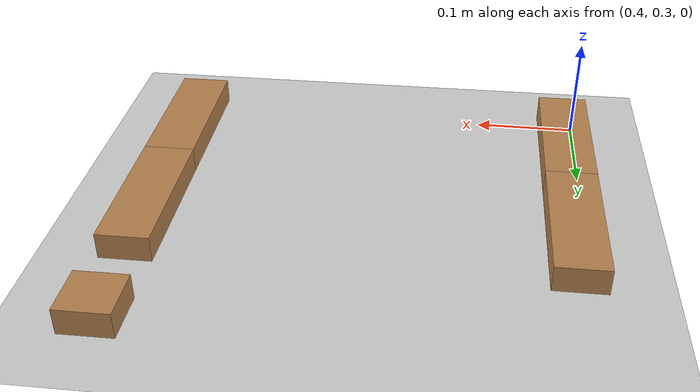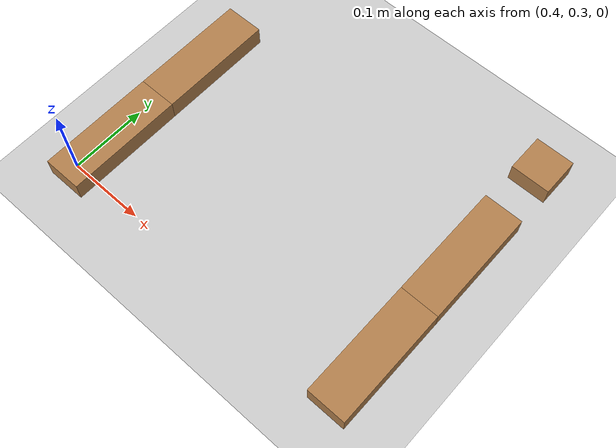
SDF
<?xml version="1.0" ?>
<sdf version="1.5">
  <world name="default">
    <!-- A global light source -->
    <include>
      <uri>model://sun</uri>
    </include>
    <!-- A ground plane -->
    <include>
      <uri>model://ground_plane</uri>
    </include>
    <physics type = "ode">
        <max_step_size>0.001</max_step_size>
        <real_time_factor>1</real_time_factor>
        <real_time_update_rate>1000</real_time_update_rate>
    </physics>

    <!-- A parallelepiped -->
    <model name="cube_05_15_05_01">
      <pose>0.81 +0.35 0.0 0 0 0</pose>
      <link name="link">
        <pose>0 0 0 0 0 0</pose>
        <inertial>
          <mass>0.1</mass>
            <inertia> <!-- inertias are tricky to compute -->
              <!-- http://gazebosim.org/tutorials?tut=inertia&cat=build_robot -->
              <ixx>0.0002075</ixx>   <!-- for a box: ixx = 0.083 * mass * (y*y + z*z) -->
              <ixy>0.0</ixy>         <!-- for a box: ixy = 0 -->
              <ixz>0.0</ixz>         <!-- for a box: ixz = 0 -->
              <iyy>4.15e-5</iyy>       <!-- for a box: iyy = 0.083 * mass * (x*x + z*z) -->
              <iyz>0.0</iyz>         <!-- for a box: iyz = 0 -->
              <izz>0.0002075</izz>   <!-- for a box: izz = 0.083 * mass * (x*x + y*y) -->
            </inertia>
        </inertial>

        <collision name="collision">
          <geometry>
            <box>
              <size>0.05 0.15 0.05</size>
            </box>
          </geometry>
          <surface>
            <contact>
              <poissons_ratio>0.347</poissons_ratio>
              <elastic_modulus>8.8e+09</elastic_modulus>
              <ode>
                <kp>10000</kp>
                <kd>0.01</kd>
                <max_vel>1.0</max_vel>
                <min_depth>0.001</min_depth>
              </ode>
            </contact>
            <friction>
              <torsional>
                <coefficient>1.0</coefficient>
                <use_patch_radius>0</use_patch_radius>
                <surface_radius>0.05</surface_radius>
              </torsional>
            </friction>
          </surface>
        </collision>

        <visual name="visual">
          <geometry>
            <box>
              <size>0.05 0.15 0.05</size>
            </box>
          </geometry>
          <material>
            <script>
              <uri>file://media/materials/scripts/gazebo.material</uri>
              <name>Gazebo/Wood</name>
            </script>
          </material>
        </visual>
      </link>
    </model>

    <!-- A base parallelepiped -->
    <model name="cube_05_15_05_02">
      <pose>0.81 +0.50 0.0 0 0 0</pose>
      <link name="link">
        <pose>0 0 0 0 0 0</pose>
        <inertial>
          <mass>0.1</mass>
            <inertia> <!-- inertias are tricky to compute -->
              <!-- http://gazebosim.org/tutorials?tut=inertia&cat=build_robot -->
              <ixx>0.0002075</ixx>   <!-- for a box: ixx = 0.083 * mass * (y*y + z*z) -->
              <ixy>0.0</ixy>         <!-- for a box: ixy = 0 -->
              <ixz>0.0</ixz>         <!-- for a box: ixz = 0 -->
              <iyy>4.15e-5</iyy>       <!-- for a box: iyy = 0.083 * mass * (x*x + z*z) -->
              <iyz>0.0</iyz>         <!-- for a box: iyz = 0 -->
              <izz>0.0002075</izz>   <!-- for a box: izz = 0.083 * mass * (x*x + y*y) -->
            </inertia>
        </inertial>

        <collision name="collision">
          <geometry>
            <box>
              <size>0.05 0.15 0.05</size>
            </box>
          </geometry>
          <surface>
            <contact>
              <poissons_ratio>0.347</poissons_ratio>
              <elastic_modulus>8.8e+09</elastic_modulus>
              <ode>
                <kp>10000</kp>
                <kd>0.01</kd>
                <max_vel>1.0</max_vel>
                <min_depth>0.001</min_depth>
              </ode>
            </contact>
            <friction>
              <torsional>
                <coefficient>1.0</coefficient>
                <use_patch_radius>0</use_patch_radius>
                <surface_radius>0.05</surface_radius>
              </torsional>
            </friction>
          </surface>
        </collision>

        <visual name="visual">
          <geometry>
            <box>
              <size>0.05 0.15 0.05</size>
            </box>
          </geometry>
          <material>
            <script>
              <uri>file://media/materials/scripts/gazebo.material</uri>
              <name>Gazebo/Wood</name>
            </script>
          </material>
        </visual>
      </link>
    </model>

    <!-- A parallelepiped -->
    <model name="cube_05_15_05_03">
      <pose>0.41 +0.35 0.0 0 0 0</pose>
      <link name="link">
        <pose>0 0 0 0 0 0</pose>
        <inertial>
          <mass>0.1</mass>
            <inertia> <!-- inertias are tricky to compute -->
              <!-- http://gazebosim.org/tutorials?tut=inertia&cat=build_robot -->
              <ixx>0.0002075</ixx>   <!-- for a box: ixx = 0.083 * mass * (y*y + z*z) -->
              <ixy>0.0</ixy>         <!-- for a box: ixy = 0 -->
              <ixz>0.0</ixz>         <!-- for a box: ixz = 0 -->
              <iyy>4.15e-5</iyy>       <!-- for a box: iyy = 0.083 * mass * (x*x + z*z) -->
              <iyz>0.0</iyz>         <!-- for a box: iyz = 0 -->
              <izz>0.0002075</izz>   <!-- for a box: izz = 0.083 * mass * (x*x + y*y) -->
            </inertia>
        </inertial>

        <collision name="collision">
          <geometry>
            <box>
              <size>0.05 0.15 0.05</size>
            </box>
          </geometry>
          <surface>
            <contact>
              <poissons_ratio>0.347</poissons_ratio>
              <elastic_modulus>8.8e+09</elastic_modulus>
              <ode>
                <kp>10000</kp>
                <kd>0.01</kd>
                <max_vel>1.0</max_vel>
                <min_depth>0.001</min_depth>
              </ode>
            </contact>
            <friction>
              <torsional>
                <coefficient>1.0</coefficient>
                <use_patch_radius>0</use_patch_radius>
                <surface_radius>0.05</surface_radius>
              </torsional>
            </friction>
          </surface>
        </collision>

        <visual name="visual">
          <geometry>
            <box>
              <size>0.05 0.15 0.05</size>
            </box>
          </geometry>
          <material>
            <script>
              <uri>file://media/materials/scripts/gazebo.material</uri>
              <name>Gazebo/Wood</name>
            </script>
          </material>
        </visual>
      </link>
    </model>

    <!-- A base parallelepiped -->
    <model name="cube_05_15_05_04">
      <pose>0.41 +0.50 0.0 0 0 0</pose>
      <link name="link">
        <pose>0 0 0 0 0 0</pose>
        <inertial>
          <mass>0.1</mass>
            <inertia> <!-- inertias are tricky to compute -->
              <!-- http://gazebosim.org/tutorials?tut=inertia&cat=build_robot -->
              <ixx>0.0002075</ixx>   <!-- for a box: ixx = 0.083 * mass * (y*y + z*z) -->
              <ixy>0.0</ixy>         <!-- for a box: ixy = 0 -->
              <ixz>0.0</ixz>         <!-- for a box: ixz = 0 -->
              <iyy>4.15e-5</iyy>       <!-- for a box: iyy = 0.083 * mass * (x*x + z*z) -->
              <iyz>0.0</iyz>         <!-- for a box: iyz = 0 -->
              <izz>0.0002075</izz>   <!-- for a box: izz = 0.083 * mass * (x*x + y*y) -->
            </inertia>
        </inertial>

        <collision name="collision">
          <geometry>
            <box>
              <size>0.05 0.15 0.05</size>
            </box>
          </geometry>
          <surface>
            <contact>
              <poissons_ratio>0.347</poissons_ratio>
              <elastic_modulus>8.8e+09</elastic_modulus>
              <ode>
                <kp>10000</kp>
                <kd>0.01</kd>
                <max_vel>1.0</max_vel>
                <min_depth>0.001</min_depth>
              </ode>
            </contact>
            <friction>
              <torsional>
                <coefficient>1.0</coefficient>
                <use_patch_radius>0</use_patch_radius>
                <surface_radius>0.05</surface_radius>
              </torsional>
            </friction>
          </surface>
        </collision>

        <visual name="visual">
          <geometry>
            <box>
              <size>0.05 0.15 0.05</size>
            </box>
          </geometry>
          <material>
            <script>
              <uri>file://media/materials/scripts/gazebo.material</uri>
              <name>Gazebo/Wood</name>
            </script>
          </material>
        </visual>
      </link>
    </model>

    <!-- A base cube -->
    <model name="cube_05_05_05_11">
      <pose>0.81 +0.65 0.0 0 0 0</pose>
      <link name="link">
        <pose>0 0 0 0 0 0</pose>
        <inertial>
          <mass>0.1</mass>
            <inertia> <!-- inertias are tricky to compute -->
              <!-- http://gazebosim.org/tutorials?tut=inertia&cat=build_robot -->
              <ixx>0.0002075</ixx>   <!-- for a box: ixx = 0.083 * mass * (y*y + z*z) -->
              <ixy>0.0</ixy>         <!-- for a box: ixy = 0 -->
              <ixz>0.0</ixz>         <!-- for a box: ixz = 0 -->
              <iyy>4.15e-5</iyy>       <!-- for a box: iyy = 0.083 * mass * (x*x + z*z) -->
              <iyz>0.0</iyz>         <!-- for a box: iyz = 0 -->
              <izz>0.0002075</izz>   <!-- for a box: izz = 0.083 * mass * (x*x + y*y) -->
            </inertia>
        </inertial>

        <collision name="collision">
          <geometry>
            <box>
              <size>0.05 0.05 0.05</size>
            </box>
          </geometry>
          <surface>
            <contact>
              <poissons_ratio>0.347</poissons_ratio>
              <elastic_modulus>8.8e+09</elastic_modulus>
              <ode>
                <kp>10000</kp>
                <kd>0.01</kd>
                <max_vel>1.0</max_vel>
                <min_depth>0.001</min_depth>
              </ode>
            </contact>
            <friction>
              <torsional>
                <coefficient>1.0</coefficient>
                <use_patch_radius>0</use_patch_radius>
                <surface_radius>0.05</surface_radius>
              </torsional>
            </friction>
          </surface>
        </collision>

        <visual name="visual">
          <geometry>
            <box>
              <size>0.05 0.05 0.05</size>
            </box>
          </geometry>
          <material>
            <script>
              <uri>file://media/materials/scripts/gazebo.material</uri>
              <name>Gazebo/Wood</name>
            </script>
          </material>
        </visual>
      </link>
    </model>

    <!-- A base cube -->
    <model name="cube_05_05_05_12">
      <pose>0.81 +0.65 0.0 0 0 0</pose>
      <link name="link">
        <pose>0 0 0 0 0 0</pose>
        <inertial>
          <mass>0.1</mass>
            <inertia> <!-- inertias are tricky to compute -->
              <!-- http://gazebosim.org/tutorials?tut=inertia&cat=build_robot -->
              <ixx>0.0002075</ixx>   <!-- for a box: ixx = 0.083 * mass * (y*y + z*z) -->
              <ixy>0.0</ixy>         <!-- for a box: ixy = 0 -->
              <ixz>0.0</ixz>         <!-- for a box: ixz = 0 -->
              <iyy>4.15e-5</iyy>       <!-- for a box: iyy = 0.083 * mass * (x*x + z*z) -->
              <iyz>0.0</iyz>         <!-- for a box: iyz = 0 -->
              <izz>0.0002075</izz>   <!-- for a box: izz = 0.083 * mass * (x*x + y*y) -->
            </inertia>
        </inertial>

        <collision name="collision">
          <geometry>
            <box>
              <size>0.05 0.05 0.05</size>
            </box>
          </geometry>
          <surface>
            <contact>
              <poissons_ratio>0.347</poissons_ratio>
              <elastic_modulus>8.8e+09</elastic_modulus>
              <ode>
                <kp>10000</kp>
                <kd>0.01</kd>
                <max_vel>1.0</max_vel>
                <min_depth>0.001</min_depth>
              </ode>
            </contact>
            <friction>
              <torsional>
                <coefficient>1.0</coefficient>
                <use_patch_radius>0</use_patch_radius>
                <surface_radius>0.05</surface_radius>
              </torsional>
            </friction>
          </surface>
        </collision>

        <visual name="visual">
          <geometry>
            <box>
              <size>0.05 0.05 0.05</size>
            </box>
          </geometry>
          <material>
            <script>
              <uri>file://media/materials/scripts/gazebo.material</uri>
              <name>Gazebo/Wood</name>
            </script>
          </material>
        </visual>
      </link>
    </model>

    <!-- A base cube -->
    <model name="cube_05_05_05_13">
      <pose>0.81 +0.65 0.0 0 0 0</pose>
      <link name="link">
        <pose>0 0 0 0 0 0</pose>
        <inertial>
          <mass>0.1</mass>
            <inertia> <!-- inertias are tricky to compute -->
              <!-- http://gazebosim.org/tutorials?tut=inertia&cat=build_robot -->
              <ixx>0.0002075</ixx>   <!-- for a box: ixx = 0.083 * mass * (y*y + z*z) -->
              <ixy>0.0</ixy>         <!-- for a box: ixy = 0 -->
              <ixz>0.0</ixz>         <!-- for a box: ixz = 0 -->
              <iyy>4.15e-5</iyy>       <!-- for a box: iyy = 0.083 * mass * (x*x + z*z) -->
              <iyz>0.0</iyz>         <!-- for a box: iyz = 0 -->
              <izz>0.0002075</izz>   <!-- for a box: izz = 0.083 * mass * (x*x + y*y) -->
            </inertia>
        </inertial>

        <collision name="collision">
          <geometry>
            <box>
              <size>0.05 0.05 0.05</size>
            </box>
          </geometry>
          <surface>
            <contact>
              <poissons_ratio>0.347</poissons_ratio>
              <elastic_modulus>8.8e+09</elastic_modulus>
              <ode>
                <kp>10000</kp>
                <kd>0.01</kd>
                <max_vel>1.0</max_vel>
                <min_depth>0.001</min_depth>
              </ode>
            </contact>
            <friction>
              <torsional>
                <coefficient>1.0</coefficient>
                <use_patch_radius>0</use_patch_radius>
                <surface_radius>0.05</surface_radius>
              </torsional>
            </friction>
          </surface>
        </collision>

        <visual name="visual">
          <geometry>
            <box>
              <size>0.05 0.05 0.05</size>
            </box>
          </geometry>
          <material>
            <script>
              <uri>file://media/materials/scripts/gazebo.material</uri>
              <name>Gazebo/Wood</name>
            </script>
          </material>
        </visual>
      </link>
    </model>

    <!-- A base cube -->
    <model name="cube_05_05_05_14">
      <pose>0.81 +0.65 0.0 0 0 0</pose>
      <link name="link">
        <pose>0 0 0 0 0 0</pose>
        <inertial>
          <mass>0.1</mass>
            <inertia> <!-- inertias are tricky to compute -->
              <!-- http://gazebosim.org/tutorials?tut=inertia&cat=build_robot -->
              <ixx>0.0002075</ixx>   <!-- for a box: ixx = 0.083 * mass * (y*y + z*z) -->
              <ixy>0.0</ixy>         <!-- for a box: ixy = 0 -->
              <ixz>0.0</ixz>         <!-- for a box: ixz = 0 -->
              <iyy>4.15e-5</iyy>       <!-- for a box: iyy = 0.083 * mass * (x*x + z*z) -->
              <iyz>0.0</iyz>         <!-- for a box: iyz = 0 -->
              <izz>0.0002075</izz>   <!-- for a box: izz = 0.083 * mass * (x*x + y*y) -->
            </inertia>
        </inertial>

        <collision name="collision">
          <geometry>
            <box>
              <size>0.05 0.05 0.05</size>
            </box>
          </geometry>
          <surface>
            <contact>
              <poissons_ratio>0.347</poissons_ratio>
              <elastic_modulus>8.8e+09</elastic_modulus>
              <ode>
                <kp>10000</kp>
                <kd>0.01</kd>
                <max_vel>1.0</max_vel>
                <min_depth>0.001</min_depth>
              </ode>
            </contact>
            <friction>
              <torsional>
                <coefficient>1.0</coefficient>
                <use_patch_radius>0</use_patch_radius>
                <surface_radius>0.05</surface_radius>
              </torsional>
            </friction>
          </surface>
        </collision>

        <visual name="visual">
          <geometry>
            <box>
              <size>0.05 0.05 0.05</size>
            </box>
          </geometry>
          <material>
            <script>
              <uri>file://media/materials/scripts/gazebo.material</uri>
              <name>Gazebo/Wood</name>
            </script>
          </material>
        </visual>
      </link>
    </model>

    <!-- A base cube -->
    <model name="cube_05_05_05_15">
      <pose>0.81 +0.65 0.0 0 0 0</pose>
      <link name="link">
        <pose>0 0 0 0 0 0</pose>
        <inertial>
          <mass>0.1</mass>
            <inertia> <!-- inertias are tricky to compute -->
              <!-- http://gazebosim.org/tutorials?tut=inertia&cat=build_robot -->
              <ixx>0.0002075</ixx>   <!-- for a box: ixx = 0.083 * mass * (y*y + z*z) -->
              <ixy>0.0</ixy>         <!-- for a box: ixy = 0 -->
              <ixz>0.0</ixz>         <!-- for a box: ixz = 0 -->
              <iyy>4.15e-5</iyy>       <!-- for a box: iyy = 0.083 * mass * (x*x + z*z) -->
              <iyz>0.0</iyz>         <!-- for a box: iyz = 0 -->
              <izz>0.0002075</izz>   <!-- for a box: izz = 0.083 * mass * (x*x + y*y) -->
            </inertia>
        </inertial>

        <collision name="collision">
          <geometry>
            <box>
              <size>0.05 0.05 0.05</size>
            </box>
          </geometry>
          <surface>
            <contact>
              <poissons_ratio>0.347</poissons_ratio>
              <elastic_modulus>8.8e+09</elastic_modulus>
              <ode>
                <kp>10000</kp>
                <kd>0.01</kd>
                <max_vel>1.0</max_vel>
                <min_depth>0.001</min_depth>
              </ode>
            </contact>
            <friction>
              <torsional>
                <coefficient>1.0</coefficient>
                <use_patch_radius>0</use_patch_radius>
                <surface_radius>0.05</surface_radius>
              </torsional>
            </friction>
          </surface>
        </collision>

        <visual name="visual">
          <geometry>
            <box>
              <size>0.05 0.05 0.05</size>
            </box>
          </geometry>
          <material>
            <script>
              <uri>file://media/materials/scripts/gazebo.material</uri>
              <name>Gazebo/Wood</name>
            </script>
          </material>
        </visual>
      </link>
    </model>

    <!-- A base cube -->
    <model name="cube_05_05_05_16">
      <pose>0.81 +0.65 0.0 0 0 0</pose>
      <link name="link">
        <pose>0 0 0 0 0 0</pose>
        <inertial>
          <mass>0.1</mass>
            <inertia> <!-- inertias are tricky to compute -->
              <!-- http://gazebosim.org/tutorials?tut=inertia&cat=build_robot -->
              <ixx>0.0002075</ixx>   <!-- for a box: ixx = 0.083 * mass * (y*y + z*z) -->
              <ixy>0.0</ixy>         <!-- for a box: ixy = 0 -->
              <ixz>0.0</ixz>         <!-- for a box: ixz = 0 -->
              <iyy>4.15e-5</iyy>       <!-- for a box: iyy = 0.083 * mass * (x*x + z*z) -->
              <iyz>0.0</iyz>         <!-- for a box: iyz = 0 -->
              <izz>0.0002075</izz>   <!-- for a box: izz = 0.083 * mass * (x*x + y*y) -->
            </inertia>
        </inertial>

        <collision name="collision">
          <geometry>
            <box>
              <size>0.05 0.05 0.05</size>
            </box>
          </geometry>
          <surface>
            <contact>
              <poissons_ratio>0.347</poissons_ratio>
              <elastic_modulus>8.8e+09</elastic_modulus>
              <ode>
                <kp>10000</kp>
                <kd>0.01</kd>
                <max_vel>1.0</max_vel>
                <min_depth>0.001</min_depth>
              </ode>
            </contact>
            <friction>
              <torsional>
                <coefficient>1.0</coefficient>
                <use_patch_radius>0</use_patch_radius>
                <surface_radius>0.05</surface_radius>
              </torsional>
            </friction>
          </surface>
        </collision>

        <visual name="visual">
          <geometry>
            <box>
              <size>0.05 0.05 0.05</size>
            </box>
          </geometry>
          <material>
            <script>
              <uri>file://media/materials/scripts/gazebo.material</uri>
              <name>Gazebo/Wood</name>
            </script>
          </material>
        </visual>
      </link>
    </model>
        <!-- A base cube -->
    <model name="cube_05_05_05_17">
      <pose>0.81 +0.65 0.0 0 0 0</pose>
      <link name="link">
        <pose>0 0 0 0 0 0</pose>
        <inertial>
          <mass>0.1</mass>
            <inertia> <!-- inertias are tricky to compute -->
              <!-- http://gazebosim.org/tutorials?tut=inertia&cat=build_robot -->
              <ixx>0.0002075</ixx>   <!-- for a box: ixx = 0.083 * mass * (y*y + z*z) -->
              <ixy>0.0</ixy>         <!-- for a box: ixy = 0 -->
              <ixz>0.0</ixz>         <!-- for a box: ixz = 0 -->
              <iyy>4.15e-5</iyy>       <!-- for a box: iyy = 0.083 * mass * (x*x + z*z) -->
              <iyz>0.0</iyz>         <!-- for a box: iyz = 0 -->
              <izz>0.0002075</izz>   <!-- for a box: izz = 0.083 * mass * (x*x + y*y) -->
            </inertia>
        </inertial>

        <collision name="collision">
          <geometry>
            <box>
              <size>0.05 0.05 0.05</size>
            </box>
          </geometry>
          <surface>
            <contact>
              <poissons_ratio>0.347</poissons_ratio>
              <elastic_modulus>8.8e+09</elastic_modulus>
              <ode>
                <kp>10000</kp>
                <kd>0.01</kd>
                <max_vel>1.0</max_vel>
                <min_depth>0.001</min_depth>
              </ode>
            </contact>
            <friction>
              <torsional>
                <coefficient>1.0</coefficient>
                <use_patch_radius>0</use_patch_radius>
                <surface_radius>0.05</surface_radius>
              </torsional>
            </friction>
          </surface>
        </collision>

        <visual name="visual">
          <geometry>
            <box>
              <size>0.05 0.05 0.05</size>
            </box>
          </geometry>
          <material>
            <script>
              <uri>file://media/materials/scripts/gazebo.material</uri>
              <name>Gazebo/Wood</name>
            </script>
          </material>
        </visual>
      </link>
    </model>

    <!-- A base cube -->
    <model name="cube_05_05_05_18">
      <pose>0.81 +0.65 0.0 0 0 0</pose>
      <link name="link">
        <pose>0 0 0 0 0 0</pose>
        <inertial>
          <mass>0.1</mass>
            <inertia> <!-- inertias are tricky to compute -->
              <!-- http://gazebosim.org/tutorials?tut=inertia&cat=build_robot -->
              <ixx>0.0002075</ixx>   <!-- for a box: ixx = 0.083 * mass * (y*y + z*z) -->
              <ixy>0.0</ixy>         <!-- for a box: ixy = 0 -->
              <ixz>0.0</ixz>         <!-- for a box: ixz = 0 -->
              <iyy>4.15e-5</iyy>       <!-- for a box: iyy = 0.083 * mass * (x*x + z*z) -->
              <iyz>0.0</iyz>         <!-- for a box: iyz = 0 -->
              <izz>0.0002075</izz>   <!-- for a box: izz = 0.083 * mass * (x*x + y*y) -->
            </inertia>
        </inertial>

        <collision name="collision">
          <geometry>
            <box>
              <size>0.05 0.05 0.05</size>
            </box>
          </geometry>
          <surface>
            <contact>
              <poissons_ratio>0.347</poissons_ratio>
              <elastic_modulus>8.8e+09</elastic_modulus>
              <ode>
                <kp>10000</kp>
                <kd>0.01</kd>
                <max_vel>1.0</max_vel>
                <min_depth>0.001</min_depth>
              </ode>
            </contact>
            <friction>
              <torsional>
                <coefficient>1.0</coefficient>
                <use_patch_radius>0</use_patch_radius>
                <surface_radius>0.05</surface_radius>
              </torsional>
            </friction>
          </surface>
        </collision>

        <visual name="visual">
          <geometry>
            <box>
              <size>0.05 0.05 0.05</size>
            </box>
          </geometry>
          <material>
            <script>
              <uri>file://media/materials/scripts/gazebo.material</uri>
              <name>Gazebo/Wood</name>
            </script>
          </material>
        </visual>
      </link>
    </model>

  </world>
</sdf>
